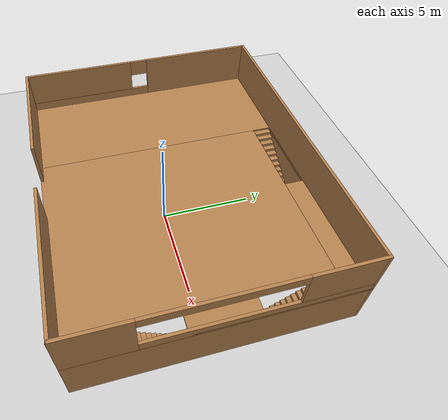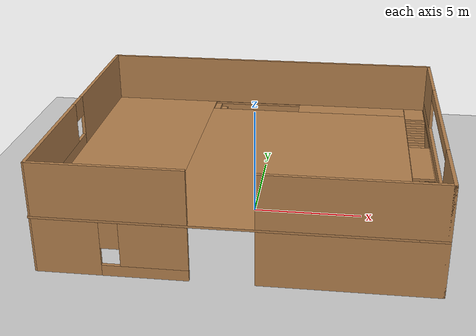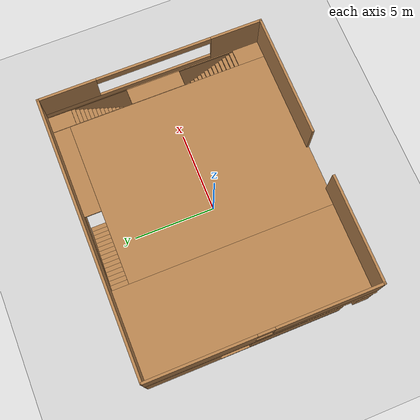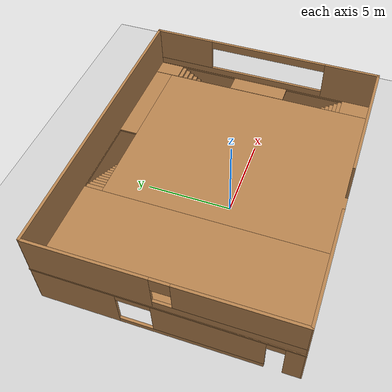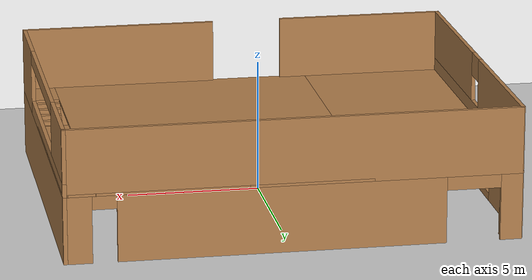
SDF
<sdf version="1.7">
 <world name="default">
  <light name="sun" type="directional">
   <pose>0 0 10 0 -0 0</pose>
   <diffuse>0.8 0.8 0.8 1</diffuse>
   <specular>0.2 0.2 0.2 1</specular>
   <attenuation>
    <range>1000</range>
    <constant>0.9</constant>
    <linear>0.01</linear>
    <quadratic>0.001</quadratic>
   </attenuation>
   <direction>-0.5 0.1 -0.9</direction>
   <spot><inner_angle>0</inner_angle><outer_angle>0</outer_angle><falloff>0</falloff></spot>
  </light>
  <model name="ground_plane">
   <static>1</static>
   <link name="link">
    <collision name="collision">
     <geometry><plane><normal>0 0 1</normal><size>100 100</size></plane></geometry>
     <surface><friction><ode><mu>100</mu><mu2>50</mu2></ode></friction></surface>
    </collision>
    <visual name="visual">
     <cast_shadows>0</cast_shadows>
     <geometry><plane><normal>0 0 1</normal><size>100 100</size></plane></geometry>
     <material>
      <script><uri>file://media/materials/scripts/gazebo.material</uri><name>Gazebo/Grey</name></script>
     </material>
    </visual>
   </link>
  </model>
  <gravity>0 0 -9.8</gravity>
  <magnetic_field>6e-06 2.3e-05 -4.2e-05</magnetic_field>
  <atmosphere type="adiabatic"/>
  <physics type="ode">
   <max_step_size>0.001</max_step_size>
   <real_time_factor>1</real_time_factor>
   <real_time_update_rate>1000</real_time_update_rate>
  </physics>
  <scene><ambient>0.4 0.4 0.4 1</ambient><background>0.7 0.7 0.7 1</background><shadows>1</shadows></scene>
  <audio><device>default</device></audio>
  <spherical_coordinates>
   <surface_model>EARTH_WGS84</surface_model>
   <latitude_deg>0</latitude_deg>
   <longitude_deg>0</longitude_deg>
   <elevation>0</elevation>
   <heading_deg>0</heading_deg>
  </spherical_coordinates>
  <model name="building_room">
   <pose>-0.092657 0.580163 0 0 -0 0</pose>
   <link name="Floor_0">
    <pose>-0 -0 2.5 0 -0 0</pose>
    <visual name="Floor_0_Visual_0">
     <pose>-5.63506 0 0.05 0 -0 0</pose>
     <geometry><box><size>5.52034 13.7502 0.1</size></box></geometry>
     <material>
      <script><uri>file://media/materials/scripts/gazebo.material</uri><name>Gazebo/Wood</name></script>
      <ambient>1 1 1 1</ambient>
     </material>
     <meta><layer>1</layer></meta>
    </visual>
    <collision name="Floor_0_Collision_0">
     <geometry><box><size>5.52034 13.7502 0.1</size></box></geometry>
     <pose>-5.63506 0 0.05 0 -0 0</pose>
    </collision>
    <visual name="Floor_0_Visual_1">
     <pose>2.16024 -0.589555 0.05 0 -0 0</pose>
     <geometry><box><size>10.0703 12.5711 0.1</size></box></geometry>
     <material>
      <script><uri>file://media/materials/scripts/gazebo.material</uri><name>Gazebo/Wood</name></script>
      <ambient>1 1 1 1</ambient>
     </material>
     <meta><layer>1</layer></meta>
    </visual>
    <collision name="Floor_0_Collision_1">
     <geometry><box><size>10.0703 12.5711 0.1</size></box></geometry>
     <pose>2.16024 -0.589555 0.05 0 -0 0</pose>
    </collision>
    <visual name="Floor_0_Visual_2">
     <pose>7.7953 -5.97863 0.05 0 -0 0</pose>
     <geometry><box><size>1.19985 1.79297 0.1</size></box></geometry>
     <material>
      <script><uri>file://media/materials/scripts/gazebo.material</uri><name>Gazebo/Wood</name></script>
      <ambient>1 1 1 1</ambient>
     </material>
     <meta><layer>1</layer></meta>
    </visual>
    <collision name="Floor_0_Collision_2">
     <geometry><box><size>1.19985 1.79297 0.1</size></box></geometry>
     <pose>7.7953 -5.97863 0.05 0 -0 0</pose>
    </collision>
    <visual name="Floor_0_Visual_3">
     <pose>8.2953 -1.65071 0.05 0 -0 0</pose>
     <geometry><box><size>0.19985 6.86285 0.1</size></box></geometry>
     <material>
      <script><uri>file://media/materials/scripts/gazebo.material</uri><name>Gazebo/Wood</name></script>
      <ambient>1 1 1 1</ambient>
     </material>
     <meta><layer>1</layer></meta>
    </visual>
    <collision name="Floor_0_Collision_3">
     <geometry><box><size>0.19985 6.86285 0.1</size></box></geometry>
     <pose>8.2953 -1.65071 0.05 0 -0 0</pose>
    </collision>
    <visual name="Floor_0_Visual_4">
     <pose>7.20868 2.64649 0.05 0 -0 0</pose>
     <geometry><box><size>0.0266 8.45725 0.1</size></box></geometry>
     <material>
      <script><uri>file://media/materials/scripts/gazebo.material</uri><name>Gazebo/Wood</name></script>
      <ambient>1 1 1 1</ambient>
     </material>
     <meta><layer>1</layer></meta>
    </visual>
    <collision name="Floor_0_Collision_4">
     <geometry><box><size>0.0266 8.45725 0.1</size></box></geometry>
     <pose>7.20868 2.64649 0.05 0 -0 0</pose>
    </collision>
    <visual name="Floor_0_Visual_5">
     <pose>7.70868 0.099288 0.05 0 -0 0</pose>
     <geometry><box><size>0.9734 3.36285 0.1</size></box></geometry>
     <material>
      <script><uri>file://media/materials/scripts/gazebo.material</uri><name>Gazebo/Wood</name></script>
      <ambient>1 1 1 1</ambient>
     </material>
     <meta><layer>1</layer></meta>
    </visual>
    <collision name="Floor_0_Collision_5">
     <geometry><box><size>0.9734 3.36285 0.1</size></box></geometry>
     <pose>7.70868 0.099288 0.05 0 -0 0</pose>
    </collision>
    <visual name="Floor_0_Visual_6">
     <pose>8.3086 4.32791 0.05 0 -0 0</pose>
     <geometry><box><size>0.17325 5.0944 0.1</size></box></geometry>
     <material>
      <script><uri>file://media/materials/scripts/gazebo.material</uri><name>Gazebo/Wood</name></script>
      <ambient>1 1 1 1</ambient>
     </material>
     <meta><layer>1</layer></meta>
    </visual>
    <collision name="Floor_0_Collision_6">
     <geometry><box><size>0.17325 5.0944 0.1</size></box></geometry>
     <pose>8.3086 4.32791 0.05 0 -0 0</pose>
    </collision>
    <visual name="Floor_0_Visual_7">
     <pose>7.70868 6.07791 0.05 0 -0 0</pose>
     <geometry><box><size>0.9734 1.5944 0.1</size></box></geometry>
     <material>
      <script><uri>file://media/materials/scripts/gazebo.material</uri><name>Gazebo/Wood</name></script>
      <ambient>1 1 1 1</ambient>
     </material>
     <meta><layer>1</layer></meta>
    </visual>
    <collision name="Floor_0_Collision_7">
     <geometry><box><size>0.9734 1.5944 0.1</size></box></geometry>
     <pose>7.70868 6.07791 0.05 0 -0 0</pose>
    </collision>
    <visual name="Floor_0_Visual_8">
     <pose>4.42734 6.28556 0.05 0 -0 0</pose>
     <geometry><box><size>5.53607 1.17911 0.1</size></box></geometry>
     <material>
      <script><uri>file://media/materials/scripts/gazebo.material</uri><name>Gazebo/Wood</name></script>
      <ambient>1 1 1 1</ambient>
     </material>
     <meta><layer>1</layer></meta>
    </visual>
    <collision name="Floor_0_Collision_8">
     <geometry><box><size>5.53607 1.17911 0.1</size></box></geometry>
     <pose>4.42734 6.28556 0.05 0 -0 0</pose>
    </collision>
    <visual name="Floor_0_Visual_9">
     <pose>-0.607791 6.78556 0.05 0 -0 0</pose>
     <geometry><box><size>4.5342 0.179111 0.1</size></box></geometry>
     <material>
      <script><uri>file://media/materials/scripts/gazebo.material</uri><name>Gazebo/Wood</name></script>
      <ambient>1 1 1 1</ambient>
     </material>
     <meta><layer>1</layer></meta>
    </visual>
    <collision name="Floor_0_Collision_9">
     <geometry><box><size>4.5342 0.179111 0.1</size></box></geometry>
     <pose>-0.607791 6.78556 0.05 0 -0 0</pose>
    </collision>
   </link>
   <link name="Stairs_3">
    <visual name="Stairs_3_Visual_0">
     <pose>1.50817 6.196 0.083333 0 -0 -1.5708</pose>
     <geometry><box><size>1 0.30228 0.166667</size></box></geometry>
     <material>
      <script><uri>file://media/materials/scripts/gazebo.material</uri><name>Gazebo/Wood</name></script>
      <ambient>1 1 1 1</ambient>
     </material>
     <meta><layer>0</layer></meta>
    </visual>
    <collision name="Stairs_3_Collision_0">
     <geometry><box><size>1 0.30228 0.166667</size></box></geometry>
     <pose>1.50817 6.196 0.083333 0 -0 -1.5708</pose>
    </collision>
    <visual name="Stairs_3_Visual_1">
     <pose>1.20589 6.196 0.25 0 -0 -1.5708</pose>
     <geometry><box><size>1 0.30228 0.166667</size></box></geometry>
     <material>
      <script><uri>file://media/materials/scripts/gazebo.material</uri><name>Gazebo/Wood</name></script>
      <ambient>1 1 1 1</ambient>
     </material>
     <meta><layer>0</layer></meta>
    </visual>
    <collision name="Stairs_3_Collision_1">
     <geometry><box><size>1 0.30228 0.166667</size></box></geometry>
     <pose>1.20589 6.196 0.25 0 -0 -1.5708</pose>
    </collision>
    <visual name="Stairs_3_Visual_2">
     <pose>0.903608 6.196 0.416667 0 -0 -1.5708</pose>
     <geometry><box><size>1 0.30228 0.166667</size></box></geometry>
     <material>
      <script><uri>file://media/materials/scripts/gazebo.material</uri><name>Gazebo/Wood</name></script>
      <ambient>1 1 1 1</ambient>
     </material>
     <meta><layer>0</layer></meta>
    </visual>
    <collision name="Stairs_3_Collision_2">
     <geometry><box><size>1 0.30228 0.166667</size></box></geometry>
     <pose>0.903608 6.196 0.416667 0 -0 -1.5708</pose>
    </collision>
    <visual name="Stairs_3_Visual_3">
     <pose>0.601328 6.196 0.583333 0 -0 -1.5708</pose>
     <geometry><box><size>1 0.30228 0.166667</size></box></geometry>
     <material>
      <script><uri>file://media/materials/scripts/gazebo.material</uri><name>Gazebo/Wood</name></script>
      <ambient>1 1 1 1</ambient>
     </material>
     <meta><layer>0</layer></meta>
    </visual>
    <collision name="Stairs_3_Collision_3">
     <geometry><box><size>1 0.30228 0.166667</size></box></geometry>
     <pose>0.601328 6.196 0.583333 0 -0 -1.5708</pose>
    </collision>
    <visual name="Stairs_3_Visual_4">
     <pose>0.299048 6.196 0.75 0 -0 -1.5708</pose>
     <geometry><box><size>1 0.30228 0.166667</size></box></geometry>
     <material>
      <script><uri>file://media/materials/scripts/gazebo.material</uri><name>Gazebo/Wood</name></script>
      <ambient>1 1 1 1</ambient>
     </material>
     <meta><layer>0</layer></meta>
    </visual>
    <collision name="Stairs_3_Collision_4">
     <geometry><box><size>1 0.30228 0.166667</size></box></geometry>
     <pose>0.299048 6.196 0.75 0 -0 -1.5708</pose>
    </collision>
    <visual name="Stairs_3_Visual_5">
     <pose>-0.003231 6.196 0.916667 0 -0 -1.5708</pose>
     <geometry><box><size>1 0.30228 0.166667</size></box></geometry>
     <material>
      <script><uri>file://media/materials/scripts/gazebo.material</uri><name>Gazebo/Wood</name></script>
      <ambient>1 1 1 1</ambient>
     </material>
     <meta><layer>0</layer></meta>
    </visual>
    <collision name="Stairs_3_Collision_5">
     <geometry><box><size>1 0.30228 0.166667</size></box></geometry>
     <pose>-0.003231 6.196 0.916667 0 -0 -1.5708</pose>
    </collision>
    <visual name="Stairs_3_Visual_6">
     <pose>-0.305511 6.196 1.08333 0 -0 -1.5708</pose>
     <geometry><box><size>1 0.30228 0.166667</size></box></geometry>
     <material>
      <script><uri>file://media/materials/scripts/gazebo.material</uri><name>Gazebo/Wood</name></script>
      <ambient>1 1 1 1</ambient>
     </material>
     <meta><layer>0</layer></meta>
    </visual>
    <collision name="Stairs_3_Collision_6">
     <geometry><box><size>1 0.30228 0.166667</size></box></geometry>
     <pose>-0.305511 6.196 1.08333 0 -0 -1.5708</pose>
    </collision>
    <visual name="Stairs_3_Visual_7">
     <pose>-0.607791 6.196 1.25 0 -0 -1.5708</pose>
     <geometry><box><size>1 0.30228 0.166667</size></box></geometry>
     <material>
      <script><uri>file://media/materials/scripts/gazebo.material</uri><name>Gazebo/Wood</name></script>
      <ambient>1 1 1 1</ambient>
     </material>
     <meta><layer>0</layer></meta>
    </visual>
    <collision name="Stairs_3_Collision_7">
     <geometry><box><size>1 0.30228 0.166667</size></box></geometry>
     <pose>-0.607791 6.196 1.25 0 -0 -1.5708</pose>
    </collision>
    <visual name="Stairs_3_Visual_8">
     <pose>-0.910071 6.196 1.41667 0 -0 -1.5708</pose>
     <geometry><box><size>1 0.30228 0.166667</size></box></geometry>
     <material>
      <script><uri>file://media/materials/scripts/gazebo.material</uri><name>Gazebo/Wood</name></script>
      <ambient>1 1 1 1</ambient>
     </material>
     <meta><layer>0</layer></meta>
    </visual>
    <collision name="Stairs_3_Collision_8">
     <geometry><box><size>1 0.30228 0.166667</size></box></geometry>
     <pose>-0.910071 6.196 1.41667 0 -0 -1.5708</pose>
    </collision>
    <visual name="Stairs_3_Visual_9">
     <pose>-1.21235 6.196 1.58333 0 -0 -1.5708</pose>
     <geometry><box><size>1 0.30228 0.166667</size></box></geometry>
     <material>
      <script><uri>file://media/materials/scripts/gazebo.material</uri><name>Gazebo/Wood</name></script>
      <ambient>1 1 1 1</ambient>
     </material>
     <meta><layer>0</layer></meta>
    </visual>
    <collision name="Stairs_3_Collision_9">
     <geometry><box><size>1 0.30228 0.166667</size></box></geometry>
     <pose>-1.21235 6.196 1.58333 0 -0 -1.5708</pose>
    </collision>
    <visual name="Stairs_3_Visual_10">
     <pose>-1.51463 6.196 1.75 0 -0 -1.5708</pose>
     <geometry><box><size>1 0.30228 0.166667</size></box></geometry>
     <material>
      <script><uri>file://media/materials/scripts/gazebo.material</uri><name>Gazebo/Wood</name></script>
      <ambient>1 1 1 1</ambient>
     </material>
     <meta><layer>0</layer></meta>
    </visual>
    <collision name="Stairs_3_Collision_10">
     <geometry><box><size>1 0.30228 0.166667</size></box></geometry>
     <pose>-1.51463 6.196 1.75 0 -0 -1.5708</pose>
    </collision>
    <visual name="Stairs_3_Visual_11">
     <pose>-1.81691 6.196 1.91667 0 -0 -1.5708</pose>
     <geometry><box><size>1 0.30228 0.166667</size></box></geometry>
     <material>
      <script><uri>file://media/materials/scripts/gazebo.material</uri><name>Gazebo/Wood</name></script>
      <ambient>1 1 1 1</ambient>
     </material>
     <meta><layer>0</layer></meta>
    </visual>
    <collision name="Stairs_3_Collision_11">
     <geometry><box><size>1 0.30228 0.166667</size></box></geometry>
     <pose>-1.81691 6.196 1.91667 0 -0 -1.5708</pose>
    </collision>
    <visual name="Stairs_3_Visual_12">
     <pose>-2.11919 6.196 2.08333 0 -0 -1.5708</pose>
     <geometry><box><size>1 0.30228 0.166667</size></box></geometry>
     <material>
      <script><uri>file://media/materials/scripts/gazebo.material</uri><name>Gazebo/Wood</name></script>
      <ambient>1 1 1 1</ambient>
     </material>
     <meta><layer>0</layer></meta>
    </visual>
    <collision name="Stairs_3_Collision_12">
     <geometry><box><size>1 0.30228 0.166667</size></box></geometry>
     <pose>-2.11919 6.196 2.08333 0 -0 -1.5708</pose>
    </collision>
    <visual name="Stairs_3_Visual_13">
     <pose>-2.42147 6.196 2.25 0 -0 -1.5708</pose>
     <geometry><box><size>1 0.30228 0.166667</size></box></geometry>
     <material>
      <script><uri>file://media/materials/scripts/gazebo.material</uri><name>Gazebo/Wood</name></script>
      <ambient>1 1 1 1</ambient>
     </material>
     <meta><layer>0</layer></meta>
    </visual>
    <collision name="Stairs_3_Collision_13">
     <geometry><box><size>1 0.30228 0.166667</size></box></geometry>
     <pose>-2.42147 6.196 2.25 0 -0 -1.5708</pose>
    </collision>
    <visual name="Stairs_3_Visual_14">
     <pose>-2.72375 6.196 2.41667 0 -0 -1.5708</pose>
     <geometry><box><size>1 0.30228 0.166667</size></box></geometry>
     <material>
      <script><uri>file://media/materials/scripts/gazebo.material</uri><name>Gazebo/Wood</name></script>
      <ambient>1 1 1 1</ambient>
     </material>
     <meta><layer>0</layer></meta>
    </visual>
    <collision name="Stairs_3_Collision_14">
     <geometry><box><size>1 0.30228 0.166667</size></box></geometry>
     <pose>-2.72375 6.196 2.41667 0 -0 -1.5708</pose>
    </collision>
   </link>
   <link name="Stairs_4">
    <visual name="Stairs_4_Visual_0">
     <pose>7.69537 -1.6988 0.083333 0 -0 0</pose>
     <geometry><box><size>1 0.233333 0.166667</size></box></geometry>
     <material>
      <script><uri>file://media/materials/scripts/gazebo.material</uri><name>Gazebo/Wood</name></script>
      <ambient>1 1 1 1</ambient>
     </material>
     <meta><layer>0</layer></meta>
    </visual>
    <collision name="Stairs_4_Collision_0">
     <geometry><box><size>1 0.233333 0.166667</size></box></geometry>
     <pose>7.69537 -1.6988 0.083333 0 -0 0</pose>
    </collision>
    <visual name="Stairs_4_Visual_1">
     <pose>7.69537 -1.93214 0.25 0 -0 0</pose>
     <geometry><box><size>1 0.233333 0.166667</size></box></geometry>
     <material>
      <script><uri>file://media/materials/scripts/gazebo.material</uri><name>Gazebo/Wood</name></script>
      <ambient>1 1 1 1</ambient>
     </material>
     <meta><layer>0</layer></meta>
    </visual>
    <collision name="Stairs_4_Collision_1">
     <geometry><box><size>1 0.233333 0.166667</size></box></geometry>
     <pose>7.69537 -1.93214 0.25 0 -0 0</pose>
    </collision>
    <visual name="Stairs_4_Visual_2">
     <pose>7.69537 -2.16547 0.416667 0 -0 0</pose>
     <geometry><box><size>1 0.233333 0.166667</size></box></geometry>
     <material>
      <script><uri>file://media/materials/scripts/gazebo.material</uri><name>Gazebo/Wood</name></script>
      <ambient>1 1 1 1</ambient>
     </material>
     <meta><layer>0</layer></meta>
    </visual>
    <collision name="Stairs_4_Collision_2">
     <geometry><box><size>1 0.233333 0.166667</size></box></geometry>
     <pose>7.69537 -2.16547 0.416667 0 -0 0</pose>
    </collision>
    <visual name="Stairs_4_Visual_3">
     <pose>7.69537 -2.3988 0.583333 0 -0 0</pose>
     <geometry><box><size>1 0.233333 0.166667</size></box></geometry>
     <material>
      <script><uri>file://media/materials/scripts/gazebo.material</uri><name>Gazebo/Wood</name></script>
      <ambient>1 1 1 1</ambient>
     </material>
     <meta><layer>0</layer></meta>
    </visual>
    <collision name="Stairs_4_Collision_3">
     <geometry><box><size>1 0.233333 0.166667</size></box></geometry>
     <pose>7.69537 -2.3988 0.583333 0 -0 0</pose>
    </collision>
    <visual name="Stairs_4_Visual_4">
     <pose>7.69537 -2.63214 0.75 0 -0 0</pose>
     <geometry><box><size>1 0.233333 0.166667</size></box></geometry>
     <material>
      <script><uri>file://media/materials/scripts/gazebo.material</uri><name>Gazebo/Wood</name></script>
      <ambient>1 1 1 1</ambient>
     </material>
     <meta><layer>0</layer></meta>
    </visual>
    <collision name="Stairs_4_Collision_4">
     <geometry><box><size>1 0.233333 0.166667</size></box></geometry>
     <pose>7.69537 -2.63214 0.75 0 -0 0</pose>
    </collision>
    <visual name="Stairs_4_Visual_5">
     <pose>7.69537 -2.86547 0.916667 0 -0 0</pose>
     <geometry><box><size>1 0.233333 0.166667</size></box></geometry>
     <material>
      <script><uri>file://media/materials/scripts/gazebo.material</uri><name>Gazebo/Wood</name></script>
      <ambient>1 1 1 1</ambient>
     </material>
     <meta><layer>0</layer></meta>
    </visual>
    <collision name="Stairs_4_Collision_5">
     <geometry><box><size>1 0.233333 0.166667</size></box></geometry>
     <pose>7.69537 -2.86547 0.916667 0 -0 0</pose>
    </collision>
    <visual name="Stairs_4_Visual_6">
     <pose>7.69537 -3.09881 1.08333 0 -0 0</pose>
     <geometry><box><size>1 0.233333 0.166667</size></box></geometry>
     <material>
      <script><uri>file://media/materials/scripts/gazebo.material</uri><name>Gazebo/Wood</name></script>
      <ambient>1 1 1 1</ambient>
     </material>
     <meta><layer>0</layer></meta>
    </visual>
    <collision name="Stairs_4_Collision_6">
     <geometry><box><size>1 0.233333 0.166667</size></box></geometry>
     <pose>7.69537 -3.09881 1.08333 0 -0 0</pose>
    </collision>
    <visual name="Stairs_4_Visual_7">
     <pose>7.69537 -3.33214 1.25 0 -0 0</pose>
     <geometry><box><size>1 0.233333 0.166667</size></box></geometry>
     <material>
      <script><uri>file://media/materials/scripts/gazebo.material</uri><name>Gazebo/Wood</name></script>
      <ambient>1 1 1 1</ambient>
     </material>
     <meta><layer>0</layer></meta>
    </visual>
    <collision name="Stairs_4_Collision_7">
     <geometry><box><size>1 0.233333 0.166667</size></box></geometry>
     <pose>7.69537 -3.33214 1.25 0 -0 0</pose>
    </collision>
    <visual name="Stairs_4_Visual_8">
     <pose>7.69537 -3.56547 1.41667 0 -0 0</pose>
     <geometry><box><size>1 0.233333 0.166667</size></box></geometry>
     <material>
      <script><uri>file://media/materials/scripts/gazebo.material</uri><name>Gazebo/Wood</name></script>
      <ambient>1 1 1 1</ambient>
     </material>
     <meta><layer>0</layer></meta>
    </visual>
    <collision name="Stairs_4_Collision_8">
     <geometry><box><size>1 0.233333 0.166667</size></box></geometry>
     <pose>7.69537 -3.56547 1.41667 0 -0 0</pose>
    </collision>
    <visual name="Stairs_4_Visual_9">
     <pose>7.69537 -3.79881 1.58333 0 -0 0</pose>
     <geometry><box><size>1 0.233333 0.166667</size></box></geometry>
     <material>
      <script><uri>file://media/materials/scripts/gazebo.material</uri><name>Gazebo/Wood</name></script>
      <ambient>1 1 1 1</ambient>
     </material>
     <meta><layer>0</layer></meta>
    </visual>
    <collision name="Stairs_4_Collision_9">
     <geometry><box><size>1 0.233333 0.166667</size></box></geometry>
     <pose>7.69537 -3.79881 1.58333 0 -0 0</pose>
    </collision>
    <visual name="Stairs_4_Visual_10">
     <pose>7.69537 -4.03214 1.75 0 -0 0</pose>
     <geometry><box><size>1 0.233333 0.166667</size></box></geometry>
     <material>
      <script><uri>file://media/materials/scripts/gazebo.material</uri><name>Gazebo/Wood</name></script>
      <ambient>1 1 1 1</ambient>
     </material>
     <meta><layer>0</layer></meta>
    </visual>
    <collision name="Stairs_4_Collision_10">
     <geometry><box><size>1 0.233333 0.166667</size></box></geometry>
     <pose>7.69537 -4.03214 1.75 0 -0 0</pose>
    </collision>
    <visual name="Stairs_4_Visual_11">
     <pose>7.69537 -4.26547 1.91667 0 -0 0</pose>
     <geometry><box><size>1 0.233333 0.166667</size></box></geometry>
     <material>
      <script><uri>file://media/materials/scripts/gazebo.material</uri><name>Gazebo/Wood</name></script>
      <ambient>1 1 1 1</ambient>
     </material>
     <meta><layer>0</layer></meta>
    </visual>
    <collision name="Stairs_4_Collision_11">
     <geometry><box><size>1 0.233333 0.166667</size></box></geometry>
     <pose>7.69537 -4.26547 1.91667 0 -0 0</pose>
    </collision>
    <visual name="Stairs_4_Visual_12">
     <pose>7.69537 -4.4988 2.08333 0 -0 0</pose>
     <geometry><box><size>1 0.233333 0.166667</size></box></geometry>
     <material>
      <script><uri>file://media/materials/scripts/gazebo.material</uri><name>Gazebo/Wood</name></script>
      <ambient>1 1 1 1</ambient>
     </material>
     <meta><layer>0</layer></meta>
    </visual>
    <collision name="Stairs_4_Collision_12">
     <geometry><box><size>1 0.233333 0.166667</size></box></geometry>
     <pose>7.69537 -4.4988 2.08333 0 -0 0</pose>
    </collision>
    <visual name="Stairs_4_Visual_13">
     <pose>7.69537 -4.73214 2.25 0 -0 0</pose>
     <geometry><box><size>1 0.233333 0.166667</size></box></geometry>
     <material>
      <script><uri>file://media/materials/scripts/gazebo.material</uri><name>Gazebo/Wood</name></script>
      <ambient>1 1 1 1</ambient>
     </material>
     <meta><layer>0</layer></meta>
    </visual>
    <collision name="Stairs_4_Collision_13">
     <geometry><box><size>1 0.233333 0.166667</size></box></geometry>
     <pose>7.69537 -4.73214 2.25 0 -0 0</pose>
    </collision>
    <visual name="Stairs_4_Visual_14">
     <pose>7.69537 -4.96547 2.41667 0 -0 0</pose>
     <geometry><box><size>1 0.233333 0.166667</size></box></geometry>
     <material>
      <script><uri>file://media/materials/scripts/gazebo.material</uri><name>Gazebo/Wood</name></script>
      <ambient>1 1 1 1</ambient>
     </material>
     <meta><layer>0</layer></meta>
    </visual>
    <collision name="Stairs_4_Collision_14">
     <geometry><box><size>1 0.233333 0.166667</size></box></geometry>
     <pose>7.69537 -4.96547 2.41667 0 -0 0</pose>
    </collision>
   </link>
   <link name="Stairs_5">
    <visual name="Stairs_5_Visual_0">
     <pose>7.72197 1.89738 0.083333 0 -0 -3.14159</pose>
     <geometry><box><size>1 0.233333 0.166667</size></box></geometry>
     <material>
      <script><uri>file://media/materials/scripts/gazebo.material</uri><name>Gazebo/Wood</name></script>
      <ambient>1 1 1 1</ambient>
     </material>
     <meta><layer>0</layer></meta>
    </visual>
    <collision name="Stairs_5_Collision_0">
     <geometry><box><size>1 0.233333 0.166667</size></box></geometry>
     <pose>7.72197 1.89738 0.083333 0 -0 -3.14159</pose>
    </collision>
    <visual name="Stairs_5_Visual_1">
     <pose>7.72197 2.13071 0.25 0 -0 -3.14159</pose>
     <geometry><box><size>1 0.233333 0.166667</size></box></geometry>
     <material>
      <script><uri>file://media/materials/scripts/gazebo.material</uri><name>Gazebo/Wood</name></script>
      <ambient>1 1 1 1</ambient>
     </material>
     <meta><layer>0</layer></meta>
    </visual>
    <collision name="Stairs_5_Collision_1">
     <geometry><box><size>1 0.233333 0.166667</size></box></geometry>
     <pose>7.72197 2.13071 0.25 0 -0 -3.14159</pose>
    </collision>
    <visual name="Stairs_5_Visual_2">
     <pose>7.72197 2.36405 0.416667 0 -0 -3.14159</pose>
     <geometry><box><size>1 0.233333 0.166667</size></box></geometry>
     <material>
      <script><uri>file://media/materials/scripts/gazebo.material</uri><name>Gazebo/Wood</name></script>
      <ambient>1 1 1 1</ambient>
     </material>
     <meta><layer>0</layer></meta>
    </visual>
    <collision name="Stairs_5_Collision_2">
     <geometry><box><size>1 0.233333 0.166667</size></box></geometry>
     <pose>7.72197 2.36405 0.416667 0 -0 -3.14159</pose>
    </collision>
    <visual name="Stairs_5_Visual_3">
     <pose>7.72197 2.59738 0.583333 0 -0 -3.14159</pose>
     <geometry><box><size>1 0.233333 0.166667</size></box></geometry>
     <material>
      <script><uri>file://media/materials/scripts/gazebo.material</uri><name>Gazebo/Wood</name></script>
      <ambient>1 1 1 1</ambient>
     </material>
     <meta><layer>0</layer></meta>
    </visual>
    <collision name="Stairs_5_Collision_3">
     <geometry><box><size>1 0.233333 0.166667</size></box></geometry>
     <pose>7.72197 2.59738 0.583333 0 -0 -3.14159</pose>
    </collision>
    <visual name="Stairs_5_Visual_4">
     <pose>7.72197 2.83071 0.75 0 -0 -3.14159</pose>
     <geometry><box><size>1 0.233333 0.166667</size></box></geometry>
     <material>
      <script><uri>file://media/materials/scripts/gazebo.material</uri><name>Gazebo/Wood</name></script>
      <ambient>1 1 1 1</ambient>
     </material>
     <meta><layer>0</layer></meta>
    </visual>
    <collision name="Stairs_5_Collision_4">
     <geometry><box><size>1 0.233333 0.166667</size></box></geometry>
     <pose>7.72197 2.83071 0.75 0 -0 -3.14159</pose>
    </collision>
    <visual name="Stairs_5_Visual_5">
     <pose>7.72197 3.06405 0.916667 0 -0 -3.14159</pose>
     <geometry><box><size>1 0.233333 0.166667</size></box></geometry>
     <material>
      <script><uri>file://media/materials/scripts/gazebo.material</uri><name>Gazebo/Wood</name></script>
      <ambient>1 1 1 1</ambient>
     </material>
     <meta><layer>0</layer></meta>
    </visual>
    <collision name="Stairs_5_Collision_5">
     <geometry><box><size>1 0.233333 0.166667</size></box></geometry>
     <pose>7.72197 3.06405 0.916667 0 -0 -3.14159</pose>
    </collision>
    <visual name="Stairs_5_Visual_6">
     <pose>7.72197 3.29738 1.08333 0 -0 -3.14159</pose>
     <geometry><box><size>1 0.233333 0.166667</size></box></geometry>
     <material>
      <script><uri>file://media/materials/scripts/gazebo.material</uri><name>Gazebo/Wood</name></script>
      <ambient>1 1 1 1</ambient>
     </material>
     <meta><layer>0</layer></meta>
    </visual>
    <collision name="Stairs_5_Collision_6">
     <geometry><box><size>1 0.233333 0.166667</size></box></geometry>
     <pose>7.72197 3.29738 1.08333 0 -0 -3.14159</pose>
    </collision>
    <visual name="Stairs_5_Visual_7">
     <pose>7.72197 3.53071 1.25 0 -0 -3.14159</pose>
     <geometry><box><size>1 0.233333 0.166667</size></box></geometry>
     <material>
      <script><uri>file://media/materials/scripts/gazebo.material</uri><name>Gazebo/Wood</name></script>
      <ambient>1 1 1 1</ambient>
     </material>
     <meta><layer>0</layer></meta>
    </visual>
    <collision name="Stairs_5_Collision_7">
     <geometry><box><size>1 0.233333 0.166667</size></box></geometry>
     <pose>7.72197 3.53071 1.25 0 -0 -3.14159</pose>
    </collision>
    <visual name="Stairs_5_Visual_8">
     <pose>7.72197 3.76405 1.41667 0 -0 -3.14159</pose>
     <geometry><box><size>1 0.233333 0.166667</size></box></geometry>
     <material>
      <script><uri>file://media/materials/scripts/gazebo.material</uri><name>Gazebo/Wood</name></script>
      <ambient>1 1 1 1</ambient>
     </material>
     <meta><layer>0</layer></meta>
    </visual>
    <collision name="Stairs_5_Collision_8">
     <geometry><box><size>1 0.233333 0.166667</size></box></geometry>
     <pose>7.72197 3.76405 1.41667 0 -0 -3.14159</pose>
    </collision>
    <visual name="Stairs_5_Visual_9">
     <pose>7.72197 3.99738 1.58333 0 -0 -3.14159</pose>
     <geometry><box><size>1 0.233333 0.166667</size></box></geometry>
     <material>
      <script><uri>file://media/materials/scripts/gazebo.material</uri><name>Gazebo/Wood</name></script>
      <ambient>1 1 1 1</ambient>
     </material>
     <meta><layer>0</layer></meta>
    </visual>
    <collision name="Stairs_5_Collision_9">
     <geometry><box><size>1 0.233333 0.166667</size></box></geometry>
     <pose>7.72197 3.99738 1.58333 0 -0 -3.14159</pose>
    </collision>
    <visual name="Stairs_5_Visual_10">
     <pose>7.72197 4.23071 1.75 0 -0 -3.14159</pose>
     <geometry><box><size>1 0.233333 0.166667</size></box></geometry>
     <material>
      <script><uri>file://media/materials/scripts/gazebo.material</uri><name>Gazebo/Wood</name></script>
      <ambient>1 1 1 1</ambient>
     </material>
     <meta><layer>0</layer></meta>
    </visual>
    <collision name="Stairs_5_Collision_10">
     <geometry><box><size>1 0.233333 0.166667</size></box></geometry>
     <pose>7.72197 4.23071 1.75 0 -0 -3.14159</pose>
    </collision>
    <visual name="Stairs_5_Visual_11">
     <pose>7.72197 4.46405 1.91667 0 -0 -3.14159</pose>
     <geometry><box><size>1 0.233333 0.166667</size></box></geometry>
     <material>
      <script><uri>file://media/materials/scripts/gazebo.material</uri><name>Gazebo/Wood</name></script>
      <ambient>1 1 1 1</ambient>
     </material>
     <meta><layer>0</layer></meta>
    </visual>
    <collision name="Stairs_5_Collision_11">
     <geometry><box><size>1 0.233333 0.166667</size></box></geometry>
     <pose>7.72197 4.46405 1.91667 0 -0 -3.14159</pose>
    </collision>
    <visual name="Stairs_5_Visual_12">
     <pose>7.72197 4.69738 2.08333 0 -0 -3.14159</pose>
     <geometry><box><size>1 0.233333 0.166667</size></box></geometry>
     <material>
      <script><uri>file://media/materials/scripts/gazebo.material</uri><name>Gazebo/Wood</name></script>
      <ambient>1 1 1 1</ambient>
     </material>
     <meta><layer>0</layer></meta>
    </visual>
    <collision name="Stairs_5_Collision_12">
     <geometry><box><size>1 0.233333 0.166667</size></box></geometry>
     <pose>7.72197 4.69738 2.08333 0 -0 -3.14159</pose>
    </collision>
    <visual name="Stairs_5_Visual_13">
     <pose>7.72197 4.93071 2.25 0 -0 -3.14159</pose>
     <geometry><box><size>1 0.233333 0.166667</size></box></geometry>
     <material>
      <script><uri>file://media/materials/scripts/gazebo.material</uri><name>Gazebo/Wood</name></script>
      <ambient>1 1 1 1</ambient>
     </material>
     <meta><layer>0</layer></meta>
    </visual>
    <collision name="Stairs_5_Collision_13">
     <geometry><box><size>1 0.233333 0.166667</size></box></geometry>
     <pose>7.72197 4.93071 2.25 0 -0 -3.14159</pose>
    </collision>
    <visual name="Stairs_5_Visual_14">
     <pose>7.72197 5.16405 2.41667 0 -0 -3.14159</pose>
     <geometry><box><size>1 0.233333 0.166667</size></box></geometry>
     <material>
      <script><uri>file://media/materials/scripts/gazebo.material</uri><name>Gazebo/Wood</name></script>
      <ambient>1 1 1 1</ambient>
     </material>
     <meta><layer>0</layer></meta>
    </visual>
    <collision name="Stairs_5_Collision_14">
     <geometry><box><size>1 0.233333 0.166667</size></box></geometry>
     <pose>7.72197 5.16405 2.41667 0 -0 -3.14159</pose>
    </collision>
   </link>
   <link name="Wall_11">
    <collision name="Wall_11_Collision">
     <geometry><box><size>7.55 0.15 2.5</size></box></geometry>
     <pose>0 0 1.25 0 -0 0</pose>
    </collision>
    <visual name="Wall_11_Visual">
     <pose>0 0 1.25 0 -0 0</pose>
     <geometry><box><size>7.55 0.15 2.5</size></box></geometry>
     <material>
      <script><uri>file://media/materials/scripts/gazebo.material</uri><name>Gazebo/Wood</name></script>
      <ambient>1 1 1 1</ambient>
     </material>
     <meta><layer>0</layer></meta>
    </visual>
    <pose>4.62022 -6.79989 0 0 -0 0</pose>
   </link>
   <link name="Wall_13">
    <pose>-8.29989 -0.030059 2.5 0 -0 -1.56783</pose>
    <visual name="Wall_13_Visual_0">
     <pose>-3.64888 0 1.25 0 -0 0</pose>
     <geometry><box><size>6.39196 0.15 2.5</size></box></geometry>
     <material>
      <script><uri>file://media/materials/scripts/gazebo.material</uri><name>Gazebo/Wood</name></script>
      <ambient>1 1 1 1</ambient>
     </material>
     <meta><layer>1</layer></meta>
    </visual>
    <collision name="Wall_13_Collision_0">
     <geometry><box><size>6.39196 0.15 2.5</size></box></geometry>
     <pose>-3.64888 0 1.25 0 -0 0</pose>
    </collision>
    <visual name="Wall_13_Visual_1">
     <pose>3.19598 0 0.3 0 -0 0</pose>
     <geometry><box><size>7.29775 0.15 0.6</size></box></geometry>
     <material>
      <script><uri>file://media/materials/scripts/gazebo.material</uri><name>Gazebo/Wood</name></script>
      <ambient>1 1 1 1</ambient>
     </material>
     <meta><layer>1</layer></meta>
    </visual>
    <collision name="Wall_13_Collision_1">
     <geometry><box><size>7.29775 0.15 0.6</size></box></geometry>
     <pose>3.19598 0 0.3 0 -0 0</pose>
    </collision>
    <visual name="Wall_13_Visual_2">
     <pose>3.69598 0 1.55 0 -0 0</pose>
     <geometry><box><size>6.29775 0.15 1.9</size></box></geometry>
     <material>
      <script><uri>file://media/materials/scripts/gazebo.material</uri><name>Gazebo/Wood</name></script>
      <ambient>1 1 1 1</ambient>
     </material>
     <meta><layer>1</layer></meta>
    </visual>
    <collision name="Wall_13_Collision_2">
     <geometry><box><size>6.29775 0.15 1.9</size></box></geometry>
     <pose>3.69598 0 1.55 0 -0 0</pose>
    </collision>
    <visual name="Wall_13_Visual_3">
     <pose>0.047105 0 2.05 0 -0 0</pose>
     <geometry><box><size>1 0.15 0.9</size></box></geometry>
     <material>
      <script><uri>file://media/materials/scripts/gazebo.material</uri><name>Gazebo/Wood</name></script>
      <ambient>1 1 1 1</ambient>
     </material>
     <meta><layer>1</layer></meta>
    </visual>
    <collision name="Wall_13_Collision_3">
     <geometry><box><size>1 0.15 0.9</size></box></geometry>
     <pose>0.047105 0 2.05 0 -0 0</pose>
    </collision>
   </link>
   <link name="Wall_14">
    <pose>8.32022 0.000111 2.5 0 -0 1.5708</pose>
    <visual name="Wall_14_Visual_0">
     <pose>-5.27619 0 1.25 0 -0 0</pose>
     <geometry><box><size>3.19762 0.15 2.5</size></box></geometry>
     <material>
      <script><uri>file://media/materials/scripts/gazebo.material</uri><name>Gazebo/Wood</name></script>
      <ambient>1 1 1 1</ambient>
     </material>
     <meta><layer>1</layer></meta>
    </visual>
    <collision name="Wall_14_Collision_0">
     <geometry><box><size>3.19762 0.15 2.5</size></box></geometry>
     <pose>-5.27619 0 1.25 0 -0 0</pose>
    </collision>
    <visual name="Wall_14_Visual_1">
     <pose>1.59881 0 0.25 0 -0 0</pose>
     <geometry><box><size>10.5524 0.15 0.5</size></box></geometry>
     <material>
      <script><uri>file://media/materials/scripts/gazebo.material</uri><name>Gazebo/Wood</name></script>
      <ambient>1 1 1 1</ambient>
     </material>
     <meta><layer>1</layer></meta>
    </visual>
    <collision name="Wall_14_Collision_1">
     <geometry><box><size>10.5524 0.15 0.5</size></box></geometry>
     <pose>1.59881 0 0.25 0 -0 0</pose>
    </collision>
    <visual name="Wall_14_Visual_2">
     <pose>5.09881 0 1.5 0 -0 0</pose>
     <geometry><box><size>3.55238 0.15 2</size></box></geometry>
     <material>
      <script><uri>file://media/materials/scripts/gazebo.material</uri><name>Gazebo/Wood</name></script>
      <ambient>1 1 1 1</ambient>
     </material>
     <meta><layer>1</layer></meta>
    </visual>
    <collision name="Wall_14_Collision_2">
     <geometry><box><size>3.55238 0.15 2</size></box></geometry>
     <pose>5.09881 0 1.5 0 -0 0</pose>
    </collision>
    <visual name="Wall_14_Visual_3">
     <pose>-0.177384 0 2.25 0 -0 0</pose>
     <geometry><box><size>7 0.15 0.5</size></box></geometry>
     <material>
      <script><uri>file://media/materials/scripts/gazebo.material</uri><name>Gazebo/Wood</name></script>
      <ambient>1 1 1 1</ambient>
     </material>
     <meta><layer>1</layer></meta>
    </visual>
    <collision name="Wall_14_Collision_3">
     <geometry><box><size>7 0.15 0.5</size></box></geometry>
     <pose>-0.177384 0 2.25 0 -0 0</pose>
    </collision>
   </link>
   <link name="Wall_15">
    <collision name="Wall_15_Collision">
     <geometry><box><size>16.75 0.15 2.5</size></box></geometry>
     <pose>0 0 1.25 0 -0 0</pose>
    </collision>
    <visual name="Wall_15_Visual">
     <pose>0 0 1.25 0 -0 0</pose>
     <geometry><box><size>16.75 0.15 2.5</size></box></geometry>
     <material>
      <script><uri>file://media/materials/scripts/gazebo.material</uri><name>Gazebo/Wood</name></script>
      <ambient>1 1 1 1</ambient>
     </material>
     <meta><layer>1</layer></meta>
    </visual>
    <pose>0.020225 6.80011 2.5 0 -0 3.14159</pose>
   </link>
   <link name="Wall_16">
    <collision name="Wall_16_Collision">
     <geometry><box><size>6.5 0.15 2.5</size></box></geometry>
     <pose>0 0 1.25 0 -0 0</pose>
    </collision>
    <visual name="Wall_16_Visual">
     <pose>0 0 1.25 0 -0 0</pose>
     <geometry><box><size>6.5 0.15 2.5</size></box></geometry>
     <material>
      <script><uri>file://media/materials/scripts/gazebo.material</uri><name>Gazebo/Wood</name></script>
      <ambient>1 1 1 1</ambient>
     </material>
     <meta><layer>1</layer></meta>
    </visual>
    <pose>-5.10478 -6.79989 2.5 0 -0 0</pose>
   </link>
   <link name="Wall_17">
    <collision name="Wall_17_Collision">
     <geometry><box><size>7.55 0.15 2.5</size></box></geometry>
     <pose>0 0 1.25 0 -0 0</pose>
    </collision>
    <visual name="Wall_17_Visual">
     <pose>0 0 1.25 0 -0 0</pose>
     <geometry><box><size>7.55 0.15 2.5</size></box></geometry>
     <material>
      <script><uri>file://media/materials/scripts/gazebo.material</uri><name>Gazebo/Wood</name></script>
      <ambient>1 1 1 1</ambient>
     </material>
     <meta><layer>1</layer></meta>
    </visual>
    <pose>4.62022 -6.79989 2.5 0 -0 0</pose>
   </link>
   <link name="Wall_3">
    <pose>-8.29989 -0.030059 0 0 -0 -1.56783</pose>
    <visual name="Wall_3_Visual_0">
     <pose>-4.63123 0 1.25 0 -0 0</pose>
     <geometry><box><size>4.42725 0.15 2.5</size></box></geometry>
     <material>
      <script><uri>file://media/materials/scripts/gazebo.material</uri><name>Gazebo/Wood</name></script>
      <ambient>1 1 1 1</ambient>
     </material>
     <meta><layer>0</layer></meta>
    </visual>
    <collision name="Wall_3_Collision_0">
     <geometry><box><size>4.42725 0.15 2.5</size></box></geometry>
     <pose>-4.63123 0 1.25 0 -0 0</pose>
    </collision>
    <visual name="Wall_3_Visual_1">
     <pose>6.3696 0 1.25 0 -0 0</pose>
     <geometry><box><size>0.950529 0.15 2.5</size></box></geometry>
     <material>
      <script><uri>file://media/materials/scripts/gazebo.material</uri><name>Gazebo/Wood</name></script>
      <ambient>1 1 1 1</ambient>
     </material>
     <meta><layer>0</layer></meta>
    </visual>
    <collision name="Wall_3_Collision_1">
     <geometry><box><size>0.950529 0.15 2.5</size></box></geometry>
     <pose>6.3696 0 1.25 0 -0 0</pose>
    </collision>
    <visual name="Wall_3_Visual_2">
     <pose>1.28836 0 0.15 0 -0 0</pose>
     <geometry><box><size>7.41194 0.15 0.3</size></box></geometry>
     <material>
      <script><uri>file://media/materials/scripts/gazebo.material</uri><name>Gazebo/Wood</name></script>
      <ambient>1 1 1 1</ambient>
     </material>
     <meta><layer>0</layer></meta>
    </visual>
    <collision name="Wall_3_Collision_2">
     <geometry><box><size>7.41194 0.15 0.3</size></box></geometry>
     <pose>1.28836 0 0.15 0 -0 0</pose>
    </collision>
    <visual name="Wall_3_Visual_3">
     <pose>2.18836 0 1.4 0 -0 0</pose>
     <geometry><box><size>5.61194 0.15 2.2</size></box></geometry>
     <material>
      <script><uri>file://media/materials/scripts/gazebo.material</uri><name>Gazebo/Wood</name></script>
      <ambient>1 1 1 1</ambient>
     </material>
     <meta><layer>0</layer></meta>
    </visual>
    <collision name="Wall_3_Collision_3">
     <geometry><box><size>5.61194 0.15 2.2</size></box></geometry>
     <pose>2.18836 0 1.4 0 -0 0</pose>
    </collision>
    <visual name="Wall_3_Visual_4">
     <pose>5.44433 0 2.25 0 -0 0</pose>
     <geometry><box><size>0.9 0.15 0.5</size></box></geometry>
     <material>
      <script><uri>file://media/materials/scripts/gazebo.material</uri><name>Gazebo/Wood</name></script>
      <ambient>1 1 1 1</ambient>
     </material>
     <meta><layer>0</layer></meta>
    </visual>
    <collision name="Wall_3_Collision_4">
     <geometry><box><size>0.9 0.15 0.5</size></box></geometry>
     <pose>5.44433 0 2.25 0 -0 0</pose>
    </collision>
    <visual name="Wall_3_Visual_5">
     <pose>-1.51761 0 2.3 0 -0 0</pose>
     <geometry><box><size>1.8 0.15 0.4</size></box></geometry>
     <material>
      <script><uri>file://media/materials/scripts/gazebo.material</uri><name>Gazebo/Wood</name></script>
      <ambient>1 1 1 1</ambient>
     </material>
     <meta><layer>0</layer></meta>
    </visual>
    <collision name="Wall_3_Collision_5">
     <geometry><box><size>1.8 0.15 0.4</size></box></geometry>
     <pose>-1.51761 0 2.3 0 -0 0</pose>
    </collision>
   </link>
   <link name="Wall_5">
    <collision name="Wall_5_Collision">
     <geometry><box><size>13.75 0.15 2.5</size></box></geometry>
     <pose>0 0 1.25 0 -0 0</pose>
    </collision>
    <visual name="Wall_5_Visual">
     <pose>0 0 1.25 0 -0 0</pose>
     <geometry><box><size>13.75 0.15 2.5</size></box></geometry>
     <material>
      <script><uri>file://media/materials/scripts/gazebo.material</uri><name>Gazebo/Wood</name></script>
      <ambient>1 1 1 1</ambient>
     </material>
     <meta><layer>0</layer></meta>
    </visual>
    <pose>8.32022 0.000111 0 0 -0 1.5708</pose>
   </link>
   <link name="Wall_7">
    <pose>0.020225 6.80011 0 0 -0 3.14159</pose>
    <visual name="Wall_7_Visual_0">
     <pose>-7.85198 0 1.25 0 -0 0</pose>
     <geometry><box><size>1.04604 0.15 2.5</size></box></geometry>
     <material>
      <script><uri>file://media/materials/scripts/gazebo.material</uri><name>Gazebo/Wood</name></script>
      <ambient>1 1 1 1</ambient>
     </material>
     <meta><layer>0</layer></meta>
    </visual>
    <collision name="Wall_7_Collision_0">
     <geometry><box><size>1.04604 0.15 2.5</size></box></geometry>
     <pose>-7.85198 0 1.25 0 -0 0</pose>
    </collision>
    <visual name="Wall_7_Visual_1">
     <pose>-0.429032 0 1.25 0 -0 0</pose>
     <geometry><box><size>11.9999 0.15 2.5</size></box></geometry>
     <material>
      <script><uri>file://media/materials/scripts/gazebo.material</uri><name>Gazebo/Wood</name></script>
      <ambient>1 1 1 1</ambient>
     </material>
     <meta><layer>0</layer></meta>
    </visual>
    <collision name="Wall_7_Collision_1">
     <geometry><box><size>11.9999 0.15 2.5</size></box></geometry>
     <pose>-0.429032 0 1.25 0 -0 0</pose>
    </collision>
    <visual name="Wall_7_Visual_2">
     <pose>7.97295 0 1.25 0 -0 0</pose>
     <geometry><box><size>0.804103 0.15 2.5</size></box></geometry>
     <material>
      <script><uri>file://media/materials/scripts/gazebo.material</uri><name>Gazebo/Wood</name></script>
      <ambient>1 1 1 1</ambient>
     </material>
     <meta><layer>0</layer></meta>
    </visual>
    <collision name="Wall_7_Collision_2">
     <geometry><box><size>0.804103 0.15 2.5</size></box></geometry>
     <pose>7.97295 0 1.25 0 -0 0</pose>
    </collision>
    <visual name="Wall_7_Visual_3">
     <pose>-6.87896 0 2.25 0 -0 0</pose>
     <geometry><box><size>0.9 0.15 0.5</size></box></geometry>
     <material>
      <script><uri>file://media/materials/scripts/gazebo.material</uri><name>Gazebo/Wood</name></script>
      <ambient>1 1 1 1</ambient>
     </material>
     <meta><layer>0</layer></meta>
    </visual>
    <collision name="Wall_7_Collision_3">
     <geometry><box><size>0.9 0.15 0.5</size></box></geometry>
     <pose>-6.87896 0 2.25 0 -0 0</pose>
    </collision>
    <visual name="Wall_7_Visual_4">
     <pose>6.5709 0 2.25 0 -0 0</pose>
     <geometry><box><size>2 0.15 0.5</size></box></geometry>
     <material>
      <script><uri>file://media/materials/scripts/gazebo.material</uri><name>Gazebo/Wood</name></script>
      <ambient>1 1 1 1</ambient>
     </material>
     <meta><layer>0</layer></meta>
    </visual>
    <collision name="Wall_7_Collision_4">
     <geometry><box><size>2 0.15 0.5</size></box></geometry>
     <pose>6.5709 0 2.25 0 -0 0</pose>
    </collision>
   </link>
   <link name="Wall_9">
    <pose>-5.10478 -6.79989 0 0 -0 0</pose>
    <visual name="Wall_9_Visual_0">
     <pose>-1.8174 0 1.25 0 -0 0</pose>
     <geometry><box><size>2.8652 0.15 2.5</size></box></geometry>
     <material>
      <script><uri>file://media/materials/scripts/gazebo.material</uri><name>Gazebo/Wood</name></script>
      <ambient>1 1 1 1</ambient>
     </material>
     <meta><layer>0</layer></meta>
    </visual>
    <collision name="Wall_9_Collision_0">
     <geometry><box><size>2.8652 0.15 2.5</size></box></geometry>
     <pose>-1.8174 0 1.25 0 -0 0</pose>
    </collision>
    <visual name="Wall_9_Visual_1">
     <pose>1.4326 0 0.25 0 -0 0</pose>
     <geometry><box><size>3.6348 0.15 0.5</size></box></geometry>
     <material>
      <script><uri>file://media/materials/scripts/gazebo.material</uri><name>Gazebo/Wood</name></script>
      <ambient>1 1 1 1</ambient>
     </material>
     <meta><layer>0</layer></meta>
    </visual>
    <collision name="Wall_9_Collision_1">
     <geometry><box><size>3.6348 0.15 0.5</size></box></geometry>
     <pose>1.4326 0 0.25 0 -0 0</pose>
    </collision>
    <visual name="Wall_9_Visual_2">
     <pose>1.8326 0 1.5 0 -0 0</pose>
     <geometry><box><size>2.8348 0.15 2</size></box></geometry>
     <material>
      <script><uri>file://media/materials/scripts/gazebo.material</uri><name>Gazebo/Wood</name></script>
      <ambient>1 1 1 1</ambient>
     </material>
     <meta><layer>0</layer></meta>
    </visual>
    <collision name="Wall_9_Collision_2">
     <geometry><box><size>2.8348 0.15 2</size></box></geometry>
     <pose>1.8326 0 1.5 0 -0 0</pose>
    </collision>
    <visual name="Wall_9_Visual_3">
     <pose>0.015203 0 1.9 0 -0 0</pose>
     <geometry><box><size>0.8 0.15 1.2</size></box></geometry>
     <material>
      <script><uri>file://media/materials/scripts/gazebo.material</uri><name>Gazebo/Wood</name></script>
      <ambient>1 1 1 1</ambient>
     </material>
     <meta><layer>0</layer></meta>
    </visual>
    <collision name="Wall_9_Collision_3">
     <geometry><box><size>0.8 0.15 1.2</size></box></geometry>
     <pose>0.015203 0 1.9 0 -0 0</pose>
    </collision>
   </link>
   <static>1</static>
  </model>
  <model name="cabinet">
   <static>1</static>
   <link name="cabinet_bottom_plate">
    <inertial>
     <pose>0 0 -1 0 -0 0</pose>
     <inertia><ixx>2.05</ixx><ixy>0</ixy><ixz>0</ixz><iyy>2.05</iyy><iyz>0</iyz><izz>2.05</izz></inertia>
     <mass>25</mass>
    </inertial>
    <collision name="cabinet_bottom_plate_geom">
     <pose>0 0 0.01 0 -0 0</pose>
     <geometry><box><size>0.45 0.45 0.02</size></box></geometry>
    </collision>
    <visual name="cabinet_bottom_plate_geom_visual">
     <pose>0 0 0.01 0 -0 0</pose>
     <geometry><box><size>0.45 0.45 0.02</size></box></geometry>
     <material>
      <script><uri>file://media/materials/scripts/gazebo.material</uri><name>Gazebo/Wood</name></script>
     </material>
    </visual>
    <collision name="cabinet_bottom_plate_geom_cabinet_back_plate">
     <pose>0.235 0 0.51 0 -0 0</pose>
     <geometry><box><size>0.02 0.45 1.02</size></box></geometry>
    </collision>
    <visual name="cabinet_bottom_plate_geom_cabinet_back_plate_visual">
     <pose>0.235 0 0.51 0 -0 0</pose>
     <geometry><box><size>0.02 0.45 1.02</size></box></geometry>
     <material>
      <script><uri>file://media/materials/scripts/gazebo.material</uri><name>Gazebo/Wood</name></script>
     </material>
    </visual>
    <collision name="cabinet_bottom_plate_geom_cabinet_left_plate">
     <pose>0 0.235 0.51 0 -0 0</pose>
     <geometry><box><size>0.45 0.02 1.02</size></box></geometry>
    </collision>
    <visual name="cabinet_bottom_plate_geom_cabinet_left_plate_visual">
     <pose>0 0.235 0.51 0 -0 0</pose>
     <geometry><box><size>0.45 0.02 1.02</size></box></geometry>
     <material>
      <script><uri>file://media/materials/scripts/gazebo.material</uri><name>Gazebo/Wood</name></script>
     </material>
    </visual>
    <collision name="cabinet_bottom_plate_geom_cabinet_middle_plate">
     <pose>0 0 0.51 0 -0 0</pose>
     <geometry><box><size>0.45 0.45 0.02</size></box></geometry>
    </collision>
    <visual name="cabinet_bottom_plate_geom_cabinet_middle_plate_visual">
     <pose>0 0 0.51 0 -0 0</pose>
     <geometry><box><size>0.45 0.45 0.02</size></box></geometry>
     <material>
      <script><uri>file://media/materials/scripts/gazebo.material</uri><name>Gazebo/Wood</name></script>
     </material>
    </visual>
    <collision name="cabinet_bottom_plate_geom_cabinet_right_plate">
     <pose>0 -0.235 0.51 0 -0 0</pose>
     <geometry><box><size>0.45 0.02 1.02</size></box></geometry>
    </collision>
    <visual name="cabinet_bottom_plate_geom_cabinet_right_plate_visual">
     <pose>0 -0.235 0.51 0 -0 0</pose>
     <geometry><box><size>0.45 0.02 1.02</size></box></geometry>
     <material>
      <script><uri>file://media/materials/scripts/gazebo.material</uri><name>Gazebo/Wood</name></script>
     </material>
    </visual>
    <collision name="cabinet_bottom_plate_geom_cabinet_top_plate">
     <pose>0 0 1.01 0 -0 0</pose>
     <geometry><box><size>0.45 0.45 0.02</size></box></geometry>
    </collision>
    <visual name="cabinet_bottom_plate_geom_cabinet_top_plate_visual">
     <pose>0 0 1.01 0 -0 0</pose>
     <geometry><box><size>0.45 0.45 0.02</size></box></geometry>
     <material>
      <script><uri>file://media/materials/scripts/gazebo.material</uri><name>Gazebo/Wood</name></script>
     </material>
    </visual>
   </link>
   <pose>-8 7 0 0 -0 0</pose>
  </model>
  <model name="cricket_ball">
   <link name="link">
    <pose>0 0 0.0375 0 -0 0</pose>
    <inertial>
     <mass>0.1467</mass>
     <inertia>
      <ixx>8.25187e-05</ixx>
      <ixy>0</ixy>
      <ixz>0</ixz>
      <iyy>8.25187e-05</iyy>
      <iyz>0</iyz>
      <izz>8.25187e-05</izz>
     </inertia>
    </inertial>
    <collision name="collision">
     <geometry><sphere><radius>0.0375</radius></sphere></geometry>
     <surface>
      <contact>
       <poissons_ratio>0.347</poissons_ratio>
       <elastic_modulus>8.8e+09</elastic_modulus>
       <ode><kp>100000</kp><kd>100</kd><max_vel>100</max_vel><min_depth>0.001</min_depth></ode>
      </contact>
      <friction>
       <torsional>
        <coefficient>1</coefficient>
        <use_patch_radius>0</use_patch_radius>
        <surface_radius>0.01</surface_radius>
       </torsional>
      </friction>
     </surface>
    </collision>
    <visual name="visual">
     <geometry><sphere><radius>0.0375</radius></sphere></geometry>
     <material>
      <script><uri>file://media/materials/scripts/gazebo.material</uri><name>Gazebo/Red</name></script>
     </material>
    </visual>
    <velocity_decay><linear>0</linear><angular>0.005</angular></velocity_decay>
   </link>
   <pose>-8 -1 -0.001014 0 -0 0</pose>
  </model>
 </world>
</sdf>
